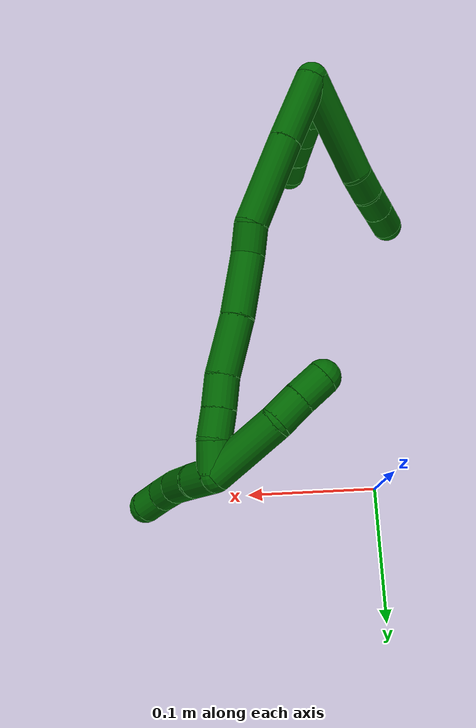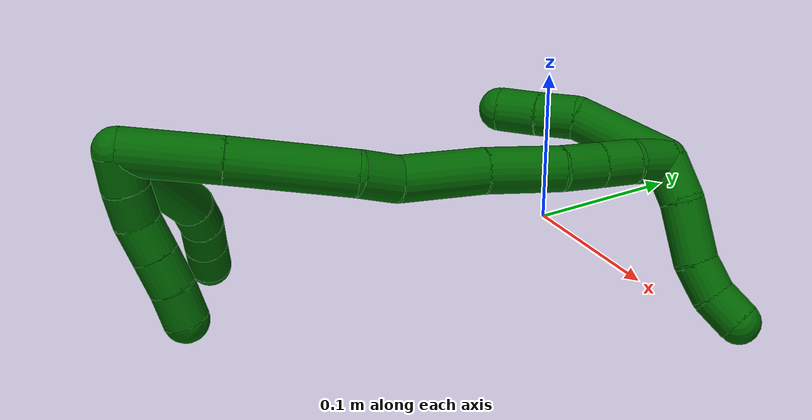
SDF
<sdf version="1.7">
 <world name="default">
  <model name="6">
   <static>0</static>
   <link name="6">
    <collision name="collision-cylinder-e_1_2_8">
     <pose>-0.001453 0.002275 -0.040774 -3.08585 -0.035566 1.13566</pose>
     <geometry><cylinder><radius>0.0125</radius><length>0.081727</length></cylinder></geometry>
     <surface>
      <friction><ode><mu>1.16</mu><mu2>1.16</mu2><slip1>0</slip1><slip2>0</slip2></ode></friction>
      <contact><ode><kp>1e+06</kp><kd>1</kd><max_vel>0</max_vel><min_depth>0.001</min_depth></ode></contact>
     </surface>
    </collision>
    <visual name="visual-cylinder-e_1_2_8">
     <pose>-0.001453 0.002275 -0.040774 -3.08585 -0.035566 1.13566</pose>
     <geometry><cylinder><radius>0.0125</radius><length>0.081727</length></cylinder></geometry>
     <material><ambient>0 0.392157 0.003922 1</ambient></material>
    </visual>
    <collision name="collision-cylinder-e_2_8_9">
     <pose>-0.003919 0.002642 -0.092296 2.96581 -0.092562 -0.967793</pose>
     <geometry><cylinder><radius>0.0125</radius><length>0.021925</length></cylinder></geometry>
     <surface>
      <friction><ode><mu>1.16</mu><mu2>1.16</mu2><slip1>0</slip1><slip2>0</slip2></ode></friction>
      <contact><ode><kp>1e+06</kp><kd>1</kd><max_vel>0</max_vel><min_depth>0.001</min_depth></ode></contact>
     </surface>
    </collision>
    <visual name="visual-cylinder-e_2_8_9">
     <pose>-0.003919 0.002642 -0.092296 2.96581 -0.092562 -0.967793</pose>
     <geometry><cylinder><radius>0.0125</radius><length>0.021925</length></cylinder></geometry>
     <material><ambient>0 0.392157 0.003922 1</ambient></material>
    </visual>
    <collision name="collision-cylinder-e_3_9_10">
     <pose>-0.006268 -0.003019 -0.113605 2.80031 -0.118541 -0.663294</pose>
     <geometry><cylinder><radius>0.0125</radius><length>0.022574</length></cylinder></geometry>
     <surface>
      <friction><ode><mu>1.16</mu><mu2>1.16</mu2><slip1>0</slip1><slip2>0</slip2></ode></friction>
      <contact><ode><kp>1e+06</kp><kd>1</kd><max_vel>0</max_vel><min_depth>0.001</min_depth></ode></contact>
     </surface>
    </collision>
    <visual name="visual-cylinder-e_3_9_10">
     <pose>-0.006268 -0.003019 -0.113605 2.80031 -0.118541 -0.663294</pose>
     <geometry><cylinder><radius>0.0125</radius><length>0.022574</length></cylinder></geometry>
     <material><ambient>0 0.392157 0.003922 1</ambient></material>
    </visual>
    <collision name="collision-cylinder-e_4_10_6">
     <pose>-0.00883 -0.010637 -0.135339 2.80839 -0.10348 -0.597481</pose>
     <geometry><cylinder><radius>0.0125</radius><length>0.023773</length></cylinder></geometry>
     <surface>
      <friction><ode><mu>1.16</mu><mu2>1.16</mu2><slip1>0</slip1><slip2>0</slip2></ode></friction>
      <contact><ode><kp>1e+06</kp><kd>1</kd><max_vel>0</max_vel><min_depth>0.001</min_depth></ode></contact>
     </surface>
    </collision>
    <visual name="visual-cylinder-e_4_10_6">
     <pose>-0.00883 -0.010637 -0.135339 2.80839 -0.10348 -0.597481</pose>
     <geometry><cylinder><radius>0.0125</radius><length>0.023773</length></cylinder></geometry>
     <material><ambient>0 0.392157 0.003922 1</ambient></material>
    </visual>
    <collision name="collision-cylinder-e_1_2_11">
     <pose>0.00344 -0.00539 -0.007688 2.5301 0.351189 1.02417</pose>
     <geometry><cylinder><radius>0.0125</radius><length>0.02</length></cylinder></geometry>
     <surface>
      <friction><ode><mu>1.16</mu><mu2>1.16</mu2><slip1>0</slip1><slip2>0</slip2></ode></friction>
      <contact><ode><kp>1e+06</kp><kd>1</kd><max_vel>0</max_vel><min_depth>0.001</min_depth></ode></contact>
     </surface>
    </collision>
    <visual name="visual-cylinder-e_1_2_11">
     <pose>0.00344 -0.00539 -0.007688 2.5301 0.351189 1.02417</pose>
     <geometry><cylinder><radius>0.0125</radius><length>0.02</length></cylinder></geometry>
     <material><ambient>0 0.392157 0.003922 1</ambient></material>
    </visual>
    <collision name="collision-cylinder-e_2_11_12">
     <pose>0.010387 -0.015422 -0.023511 2.62308 0.358239 1.19799</pose>
     <geometry><cylinder><radius>0.0125</radius><length>0.02</length></cylinder></geometry>
     <surface>
      <friction><ode><mu>1.16</mu><mu2>1.16</mu2><slip1>0</slip1><slip2>0</slip2></ode></friction>
      <contact><ode><kp>1e+06</kp><kd>1</kd><max_vel>0</max_vel><min_depth>0.001</min_depth></ode></contact>
     </surface>
    </collision>
    <visual name="visual-cylinder-e_2_11_12">
     <pose>0.010387 -0.015422 -0.023511 2.62308 0.358239 1.19799</pose>
     <geometry><cylinder><radius>0.0125</radius><length>0.02</length></cylinder></geometry>
     <material><ambient>0 0.392157 0.003922 1</ambient></material>
    </visual>
    <collision name="collision-cylinder-e_3_12_13">
     <pose>0.019724 -0.023633 -0.038942 2.68667 0.622572 1.89432</pose>
     <geometry><cylinder><radius>0.0125</radius><length>0.02</length></cylinder></geometry>
     <surface>
      <friction><ode><mu>1.16</mu><mu2>1.16</mu2><slip1>0</slip1><slip2>0</slip2></ode></friction>
      <contact><ode><kp>1e+06</kp><kd>1</kd><max_vel>0</max_vel><min_depth>0.001</min_depth></ode></contact>
     </surface>
    </collision>
    <visual name="visual-cylinder-e_3_12_13">
     <pose>0.019724 -0.023633 -0.038942 2.68667 0.622572 1.89432</pose>
     <geometry><cylinder><radius>0.0125</radius><length>0.02</length></cylinder></geometry>
     <material><ambient>0 0.392157 0.003922 1</ambient></material>
    </visual>
    <collision name="collision-cylinder-e_4_13_14">
     <pose>0.031293 -0.030835 -0.053581 2.68213 0.611124 1.86568</pose>
     <geometry><cylinder><radius>0.0125</radius><length>0.02</length></cylinder></geometry>
     <surface>
      <friction><ode><mu>1.16</mu><mu2>1.16</mu2><slip1>0</slip1><slip2>0</slip2></ode></friction>
      <contact><ode><kp>1e+06</kp><kd>1</kd><max_vel>0</max_vel><min_depth>0.001</min_depth></ode></contact>
     </surface>
    </collision>
    <visual name="visual-cylinder-e_4_13_14">
     <pose>0.031293 -0.030835 -0.053581 2.68213 0.611124 1.86568</pose>
     <geometry><cylinder><radius>0.0125</radius><length>0.02</length></cylinder></geometry>
     <material><ambient>0 0.392157 0.003922 1</ambient></material>
    </visual>
    <collision name="collision-cylinder-e_5_14_5">
     <pose>0.041962 -0.038727 -0.068506 2.62983 0.515676 1.57877</pose>
     <geometry><cylinder><radius>0.0125</radius><length>0.02</length></cylinder></geometry>
     <surface>
      <friction><ode><mu>1.16</mu><mu2>1.16</mu2><slip1>0</slip1><slip2>0</slip2></ode></friction>
      <contact><ode><kp>1e+06</kp><kd>1</kd><max_vel>0</max_vel><min_depth>0.001</min_depth></ode></contact>
     </surface>
    </collision>
    <visual name="visual-cylinder-e_5_14_5">
     <pose>0.041962 -0.038727 -0.068506 2.62983 0.515676 1.57877</pose>
     <geometry><cylinder><radius>0.0125</radius><length>0.02</length></cylinder></geometry>
     <material><ambient>0 0.392157 0.003922 1</ambient></material>
    </visual>
    <collision name="collision-cylinder-e_1_2_15">
     <pose>0.018145 0.015395 -0.010798 -2.18248 0.767552 -1.32045</pose>
     <geometry><cylinder><radius>0.0125</radius><length>0.052263</length></cylinder></geometry>
     <surface>
      <friction><ode><mu>1.16</mu><mu2>1.16</mu2><slip1>0</slip1><slip2>0</slip2></ode></friction>
      <contact><ode><kp>1e+06</kp><kd>1</kd><max_vel>0</max_vel><min_depth>0.001</min_depth></ode></contact>
     </surface>
    </collision>
    <visual name="visual-cylinder-e_1_2_15">
     <pose>0.018145 0.015395 -0.010798 -2.18248 0.767552 -1.32045</pose>
     <geometry><cylinder><radius>0.0125</radius><length>0.052263</length></cylinder></geometry>
     <material><ambient>0 0.392157 0.003922 1</ambient></material>
    </visual>
    <collision name="collision-cylinder-e_2_15_16">
     <pose>0.059403 0.050371 -0.036417 -2.21869 0.755103 -1.34647</pose>
     <geometry><cylinder><radius>0.0125</radius><length>0.067446</length></cylinder></geometry>
     <surface>
      <friction><ode><mu>1.16</mu><mu2>1.16</mu2><slip1>0</slip1><slip2>0</slip2></ode></friction>
      <contact><ode><kp>1e+06</kp><kd>1</kd><max_vel>0</max_vel><min_depth>0.001</min_depth></ode></contact>
     </surface>
    </collision>
    <visual name="visual-cylinder-e_2_15_16">
     <pose>0.059403 0.050371 -0.036417 -2.21869 0.755103 -1.34647</pose>
     <geometry><cylinder><radius>0.0125</radius><length>0.067446</length></cylinder></geometry>
     <material><ambient>0 0.392157 0.003922 1</ambient></material>
    </visual>
    <collision name="collision-cylinder-e_3_16_17">
     <pose>0.08812 0.075927 -0.058655 -2.46343 0.531918 -1.31531</pose>
     <geometry><cylinder><radius>0.0125</radius><length>0.022103</length></cylinder></geometry>
     <surface>
      <friction><ode><mu>1.16</mu><mu2>1.16</mu2><slip1>0</slip1><slip2>0</slip2></ode></friction>
      <contact><ode><kp>1e+06</kp><kd>1</kd><max_vel>0</max_vel><min_depth>0.001</min_depth></ode></contact>
     </surface>
    </collision>
    <visual name="visual-cylinder-e_3_16_17">
     <pose>0.08812 0.075927 -0.058655 -2.46343 0.531918 -1.31531</pose>
     <geometry><cylinder><radius>0.0125</radius><length>0.022103</length></cylinder></geometry>
     <material><ambient>0 0.392157 0.003922 1</ambient></material>
    </visual>
    <collision name="collision-cylinder-e_4_17_18">
     <pose>0.105385 0.099176 -0.0776 -2.1593 0.511562 -0.909504</pose>
     <geometry><cylinder><radius>0.0125</radius><length>0.047632</length></cylinder></geometry>
     <surface>
      <friction><ode><mu>1.16</mu><mu2>1.16</mu2><slip1>0</slip1><slip2>0</slip2></ode></friction>
      <contact><ode><kp>1e+06</kp><kd>1</kd><max_vel>0</max_vel><min_depth>0.001</min_depth></ode></contact>
     </surface>
    </collision>
    <visual name="visual-cylinder-e_4_17_18">
     <pose>0.105385 0.099176 -0.0776 -2.1593 0.511562 -0.909504</pose>
     <geometry><cylinder><radius>0.0125</radius><length>0.047632</length></cylinder></geometry>
     <material><ambient>0 0.392157 0.003922 1</ambient></material>
    </visual>
    <collision name="collision-cylinder-e_5_18_19">
     <pose>0.129145 0.131015 -0.099168 -2.17429 0.599955 -1.0644</pose>
     <geometry><cylinder><radius>0.0125</radius><length>0.042868</length></cylinder></geometry>
     <surface>
      <friction><ode><mu>1.16</mu><mu2>1.16</mu2><slip1>0</slip1><slip2>0</slip2></ode></friction>
      <contact><ode><kp>1e+06</kp><kd>1</kd><max_vel>0</max_vel><min_depth>0.001</min_depth></ode></contact>
     </surface>
    </collision>
    <visual name="visual-cylinder-e_5_18_19">
     <pose>0.129145 0.131015 -0.099168 -2.17429 0.599955 -1.0644</pose>
     <geometry><cylinder><radius>0.0125</radius><length>0.042868</length></cylinder></geometry>
     <material><ambient>0 0.392157 0.003922 1</ambient></material>
    </visual>
    <collision name="collision-cylinder-e_6_19_20">
     <pose>0.146452 0.153928 -0.115539 -2.21967 0.461152 -0.883092</pose>
     <geometry><cylinder><radius>0.0125</radius><length>0.023397</length></cylinder></geometry>
     <surface>
      <friction><ode><mu>1.16</mu><mu2>1.16</mu2><slip1>0</slip1><slip2>0</slip2></ode></friction>
      <contact><ode><kp>1e+06</kp><kd>1</kd><max_vel>0</max_vel><min_depth>0.001</min_depth></ode></contact>
     </surface>
    </collision>
    <visual name="visual-cylinder-e_6_19_20">
     <pose>0.146452 0.153928 -0.115539 -2.21967 0.461152 -0.883092</pose>
     <geometry><cylinder><radius>0.0125</radius><length>0.023397</length></cylinder></geometry>
     <material><ambient>0 0.392157 0.003922 1</ambient></material>
    </visual>
    <collision name="collision-cylinder-e_7_20_21">
     <pose>0.156644 0.169928 -0.127077 -2.16827 0.494056 -0.889528</pose>
     <geometry><cylinder><radius>0.0125</radius><length>0.021027</length></cylinder></geometry>
     <surface>
      <friction><ode><mu>1.16</mu><mu2>1.16</mu2><slip1>0</slip1><slip2>0</slip2></ode></friction>
      <contact><ode><kp>1e+06</kp><kd>1</kd><max_vel>0</max_vel><min_depth>0.001</min_depth></ode></contact>
     </surface>
    </collision>
    <visual name="visual-cylinder-e_7_20_21">
     <pose>0.156644 0.169928 -0.127077 -2.16827 0.494056 -0.889528</pose>
     <geometry><cylinder><radius>0.0125</radius><length>0.021027</length></cylinder></geometry>
     <material><ambient>0 0.392157 0.003922 1</ambient></material>
    </visual>
    <collision name="collision-cylinder-e_8_21_1">
     <pose>0.165835 0.185246 -0.139957 -2.35668 0.369943 -0.849093</pose>
     <geometry><cylinder><radius>0.0125</radius><length>0.023264</length></cylinder></geometry>
     <surface>
      <friction><ode><mu>1.16</mu><mu2>1.16</mu2><slip1>0</slip1><slip2>0</slip2></ode></friction>
      <contact><ode><kp>1e+06</kp><kd>1</kd><max_vel>0</max_vel><min_depth>0.001</min_depth></ode></contact>
     </surface>
    </collision>
    <visual name="visual-cylinder-e_8_21_1">
     <pose>0.165835 0.185246 -0.139957 -2.35668 0.369943 -0.849093</pose>
     <geometry><cylinder><radius>0.0125</radius><length>0.023264</length></cylinder></geometry>
     <material><ambient>0 0.392157 0.003922 1</ambient></material>
    </visual>
    <collision name="collision-cylinder-e_1_1_22">
     <pose>0.143651 0.187658 -0.141752 0.729336 -1.28056 -0.554146</pose>
     <geometry><cylinder><radius>0.0125</radius><length>0.055083</length></cylinder></geometry>
     <surface>
      <friction><ode><mu>1.16</mu><mu2>1.16</mu2><slip1>0</slip1><slip2>0</slip2></ode></friction>
      <contact><ode><kp>1e+06</kp><kd>1</kd><max_vel>0</max_vel><min_depth>0.001</min_depth></ode></contact>
     </surface>
    </collision>
    <visual name="visual-cylinder-e_1_1_22">
     <pose>0.143651 0.187658 -0.141752 0.729336 -1.28056 -0.554146</pose>
     <geometry><cylinder><radius>0.0125</radius><length>0.055083</length></cylinder></geometry>
     <material><ambient>0 0.392157 0.003922 1</ambient></material>
    </visual>
    <collision name="collision-cylinder-e_2_22_23">
     <pose>0.10751 0.176919 -0.135164 1.44182 -1.05472 -0.945962</pose>
     <geometry><cylinder><radius>0.0125</radius><length>0.022425</length></cylinder></geometry>
     <surface>
      <friction><ode><mu>1.16</mu><mu2>1.16</mu2><slip1>0</slip1><slip2>0</slip2></ode></friction>
      <contact><ode><kp>1e+06</kp><kd>1</kd><max_vel>0</max_vel><min_depth>0.001</min_depth></ode></contact>
     </surface>
    </collision>
    <visual name="visual-cylinder-e_2_22_23">
     <pose>0.10751 0.176919 -0.135164 1.44182 -1.05472 -0.945962</pose>
     <geometry><cylinder><radius>0.0125</radius><length>0.022425</length></cylinder></geometry>
     <material><ambient>0 0.392157 0.003922 1</ambient></material>
    </visual>
    <collision name="collision-cylinder-e_3_23_4">
     <pose>0.08773 0.16636 -0.134008 1.4834 -1.10101 -1.02458</pose>
     <geometry><cylinder><radius>0.0125</radius><length>0.022493</length></cylinder></geometry>
     <surface>
      <friction><ode><mu>1.16</mu><mu2>1.16</mu2><slip1>0</slip1><slip2>0</slip2></ode></friction>
      <contact><ode><kp>1e+06</kp><kd>1</kd><max_vel>0</max_vel><min_depth>0.001</min_depth></ode></contact>
     </surface>
    </collision>
    <visual name="visual-cylinder-e_3_23_4">
     <pose>0.08773 0.16636 -0.134008 1.4834 -1.10101 -1.02458</pose>
     <geometry><cylinder><radius>0.0125</radius><length>0.022493</length></cylinder></geometry>
     <material><ambient>0 0.392157 0.003922 1</ambient></material>
    </visual>
    <collision name="collision-cylinder-e_1_1_24">
     <pose>0.179976 0.186839 -0.151577 2.1474 0.940939 1.50616</pose>
     <geometry><cylinder><radius>0.0125</radius><length>0.024589</length></cylinder></geometry>
     <surface>
      <friction><ode><mu>1.16</mu><mu2>1.16</mu2><slip1>0</slip1><slip2>0</slip2></ode></friction>
      <contact><ode><kp>1e+06</kp><kd>1</kd><max_vel>0</max_vel><min_depth>0.001</min_depth></ode></contact>
     </surface>
    </collision>
    <visual name="visual-cylinder-e_1_1_24">
     <pose>0.179976 0.186839 -0.151577 2.1474 0.940939 1.50616</pose>
     <geometry><cylinder><radius>0.0125</radius><length>0.024589</length></cylinder></geometry>
     <material><ambient>0 0.392157 0.003922 1</ambient></material>
    </visual>
    <collision name="collision-cylinder-e_2_24_25">
     <pose>0.201394 0.170602 -0.163451 2.23297 0.727702 1.32451</pose>
     <geometry><cylinder><radius>0.0125</radius><length>0.034526</length></cylinder></geometry>
     <surface>
      <friction><ode><mu>1.16</mu><mu2>1.16</mu2><slip1>0</slip1><slip2>0</slip2></ode></friction>
      <contact><ode><kp>1e+06</kp><kd>1</kd><max_vel>0</max_vel><min_depth>0.001</min_depth></ode></contact>
     </surface>
    </collision>
    <visual name="visual-cylinder-e_2_24_25">
     <pose>0.201394 0.170602 -0.163451 2.23297 0.727702 1.32451</pose>
     <geometry><cylinder><radius>0.0125</radius><length>0.034526</length></cylinder></geometry>
     <material><ambient>0 0.392157 0.003922 1</ambient></material>
    </visual>
    <collision name="collision-cylinder-e_3_25_26">
     <pose>0.221221 0.156389 -0.175945 2.41672 0.939247 1.85821</pose>
     <geometry><cylinder><radius>0.0125</radius><length>0.020678</length></cylinder></geometry>
     <surface>
      <friction><ode><mu>1.16</mu><mu2>1.16</mu2><slip1>0</slip1><slip2>0</slip2></ode></friction>
      <contact><ode><kp>1e+06</kp><kd>1</kd><max_vel>0</max_vel><min_depth>0.001</min_depth></ode></contact>
     </surface>
    </collision>
    <visual name="visual-cylinder-e_3_25_26">
     <pose>0.221221 0.156389 -0.175945 2.41672 0.939247 1.85821</pose>
     <geometry><cylinder><radius>0.0125</radius><length>0.020678</length></cylinder></geometry>
     <material><ambient>0 0.392157 0.003922 1</ambient></material>
    </visual>
    <collision name="collision-cylinder-e_4_26_3">
     <pose>0.239003 0.150868 -0.183807 2.72074 1.20572 2.53985</pose>
     <geometry><cylinder><radius>0.0125</radius><length>0.020207</length></cylinder></geometry>
     <surface>
      <friction><ode><mu>1.16</mu><mu2>1.16</mu2><slip1>0</slip1><slip2>0</slip2></ode></friction>
      <contact><ode><kp>1e+06</kp><kd>1</kd><max_vel>0</max_vel><min_depth>0.001</min_depth></ode></contact>
     </surface>
    </collision>
    <visual name="visual-cylinder-e_4_26_3">
     <pose>0.239003 0.150868 -0.183807 2.72074 1.20572 2.53985</pose>
     <geometry><cylinder><radius>0.0125</radius><length>0.020207</length></cylinder></geometry>
     <material><ambient>0 0.392157 0.003922 1</ambient></material>
    </visual>
    <collision name="collision-sphere-3">
     <pose>0.248441 0.149395 -0.1871 0 -0 0</pose>
     <geometry><sphere><radius>0.0125</radius></sphere></geometry>
     <surface>
      <friction><ode><mu>1.16</mu><mu2>1.16</mu2><slip1>0</slip1><slip2>0</slip2></ode></friction>
      <contact><ode><kp>1e+06</kp><kd>1</kd><max_vel>0</max_vel><min_depth>0.001</min_depth></ode></contact>
     </surface>
    </collision>
    <visual name="visual-sphere-3">
     <pose>0.248441 0.149395 -0.1871 0 -0 0</pose>
     <geometry><sphere><radius>0.0125</radius></sphere></geometry>
     <material><ambient>0 0.392157 0.003922 1</ambient></material>
    </visual>
    <collision name="collision-sphere-26">
     <pose>0.229566 0.152342 -0.180515 0 -0 0</pose>
     <geometry><sphere><radius>0.0125</radius></sphere></geometry>
     <surface>
      <friction><ode><mu>1.16</mu><mu2>1.16</mu2><slip1>0</slip1><slip2>0</slip2></ode></friction>
      <contact><ode><kp>1e+06</kp><kd>1</kd><max_vel>0</max_vel><min_depth>0.001</min_depth></ode></contact>
     </surface>
    </collision>
    <visual name="visual-sphere-26">
     <pose>0.229566 0.152342 -0.180515 0 -0 0</pose>
     <geometry><sphere><radius>0.0125</radius></sphere></geometry>
     <material><ambient>0 0.392157 0.003922 1</ambient></material>
    </visual>
    <collision name="collision-sphere-25">
     <pose>0.212876 0.160436 -0.171376 0 -0 0</pose>
     <geometry><sphere><radius>0.0125</radius></sphere></geometry>
     <surface>
      <friction><ode><mu>1.16</mu><mu2>1.16</mu2><slip1>0</slip1><slip2>0</slip2></ode></friction>
      <contact><ode><kp>1e+06</kp><kd>1</kd><max_vel>0</max_vel><min_depth>0.001</min_depth></ode></contact>
     </surface>
    </collision>
    <visual name="visual-sphere-25">
     <pose>0.212876 0.160436 -0.171376 0 -0 0</pose>
     <geometry><sphere><radius>0.0125</radius></sphere></geometry>
     <material><ambient>0 0.392157 0.003922 1</ambient></material>
    </visual>
    <collision name="collision-sphere-24">
     <pose>0.189911 0.180768 -0.155525 0 -0 0</pose>
     <geometry><sphere><radius>0.0125</radius></sphere></geometry>
     <surface>
      <friction><ode><mu>1.16</mu><mu2>1.16</mu2><slip1>0</slip1><slip2>0</slip2></ode></friction>
      <contact><ode><kp>1e+06</kp><kd>1</kd><max_vel>0</max_vel><min_depth>0.001</min_depth></ode></contact>
     </surface>
    </collision>
    <visual name="visual-sphere-24">
     <pose>0.189911 0.180768 -0.155525 0 -0 0</pose>
     <geometry><sphere><radius>0.0125</radius></sphere></geometry>
     <material><ambient>0 0.392157 0.003922 1</ambient></material>
    </visual>
    <collision name="collision-sphere-4">
     <pose>0.077702 0.161288 -0.133563 0 -0 0</pose>
     <geometry><sphere><radius>0.0125</radius></sphere></geometry>
     <surface>
      <friction><ode><mu>1.16</mu><mu2>1.16</mu2><slip1>0</slip1><slip2>0</slip2></ode></friction>
      <contact><ode><kp>1e+06</kp><kd>1</kd><max_vel>0</max_vel><min_depth>0.001</min_depth></ode></contact>
     </surface>
    </collision>
    <visual name="visual-sphere-4">
     <pose>0.077702 0.161288 -0.133563 0 -0 0</pose>
     <geometry><sphere><radius>0.0125</radius></sphere></geometry>
     <material><ambient>0 0.392157 0.003922 1</ambient></material>
    </visual>
    <collision name="collision-sphere-23">
     <pose>0.097758 0.171432 -0.134452 0 -0 0</pose>
     <geometry><sphere><radius>0.0125</radius></sphere></geometry>
     <surface>
      <friction><ode><mu>1.16</mu><mu2>1.16</mu2><slip1>0</slip1><slip2>0</slip2></ode></friction>
      <contact><ode><kp>1e+06</kp><kd>1</kd><max_vel>0</max_vel><min_depth>0.001</min_depth></ode></contact>
     </surface>
    </collision>
    <visual name="visual-sphere-23">
     <pose>0.097758 0.171432 -0.134452 0 -0 0</pose>
     <geometry><sphere><radius>0.0125</radius></sphere></geometry>
     <material><ambient>0 0.392157 0.003922 1</ambient></material>
    </visual>
    <collision name="collision-sphere-22">
     <pose>0.117262 0.182406 -0.135875 0 -0 0</pose>
     <geometry><sphere><radius>0.0125</radius></sphere></geometry>
     <surface>
      <friction><ode><mu>1.16</mu><mu2>1.16</mu2><slip1>0</slip1><slip2>0</slip2></ode></friction>
      <contact><ode><kp>1e+06</kp><kd>1</kd><max_vel>0</max_vel><min_depth>0.001</min_depth></ode></contact>
     </surface>
    </collision>
    <visual name="visual-sphere-22">
     <pose>0.117262 0.182406 -0.135875 0 -0 0</pose>
     <geometry><sphere><radius>0.0125</radius></sphere></geometry>
     <material><ambient>0 0.392157 0.003922 1</ambient></material>
    </visual>
    <collision name="collision-sphere-1">
     <pose>0.17004 0.19291 -0.147629 0 -0 0</pose>
     <geometry><sphere><radius>0.0125</radius></sphere></geometry>
     <surface>
      <friction><ode><mu>1.16</mu><mu2>1.16</mu2><slip1>0</slip1><slip2>0</slip2></ode></friction>
      <contact><ode><kp>1e+06</kp><kd>1</kd><max_vel>0</max_vel><min_depth>0.001</min_depth></ode></contact>
     </surface>
    </collision>
    <visual name="visual-sphere-1">
     <pose>0.17004 0.19291 -0.147629 0 -0 0</pose>
     <geometry><sphere><radius>0.0125</radius></sphere></geometry>
     <material><ambient>0 0.392157 0.003922 1</ambient></material>
    </visual>
    <collision name="collision-sphere-21">
     <pose>0.161629 0.177581 -0.132284 0 -0 0</pose>
     <geometry><sphere><radius>0.0125</radius></sphere></geometry>
     <surface>
      <friction><ode><mu>1.16</mu><mu2>1.16</mu2><slip1>0</slip1><slip2>0</slip2></ode></friction>
      <contact><ode><kp>1e+06</kp><kd>1</kd><max_vel>0</max_vel><min_depth>0.001</min_depth></ode></contact>
     </surface>
    </collision>
    <visual name="visual-sphere-21">
     <pose>0.161629 0.177581 -0.132284 0 -0 0</pose>
     <geometry><sphere><radius>0.0125</radius></sphere></geometry>
     <material><ambient>0 0.392157 0.003922 1</ambient></material>
    </visual>
    <collision name="collision-sphere-11">
     <pose>0.00688 -0.010781 -0.015376 0 -0 0</pose>
     <geometry><sphere><radius>0.0125</radius></sphere></geometry>
     <surface>
      <friction><ode><mu>1.16</mu><mu2>1.16</mu2><slip1>0</slip1><slip2>0</slip2></ode></friction>
      <contact><ode><kp>1e+06</kp><kd>1</kd><max_vel>0</max_vel><min_depth>0.001</min_depth></ode></contact>
     </surface>
    </collision>
    <visual name="visual-sphere-11">
     <pose>0.00688 -0.010781 -0.015376 0 -0 0</pose>
     <geometry><sphere><radius>0.0125</radius></sphere></geometry>
     <material><ambient>0 0.392157 0.003922 1</ambient></material>
    </visual>
    <collision name="collision-sphere-6">
     <pose>-0.010058 -0.014504 -0.146512 0 -0 0</pose>
     <geometry><sphere><radius>0.0125</radius></sphere></geometry>
     <surface>
      <friction><ode><mu>1.16</mu><mu2>1.16</mu2><slip1>0</slip1><slip2>0</slip2></ode></friction>
      <contact><ode><kp>1e+06</kp><kd>1</kd><max_vel>0</max_vel><min_depth>0.001</min_depth></ode></contact>
     </surface>
    </collision>
    <visual name="visual-sphere-6">
     <pose>-0.010058 -0.014504 -0.146512 0 -0 0</pose>
     <geometry><sphere><radius>0.0125</radius></sphere></geometry>
     <material><ambient>0 0.392157 0.003922 1</ambient></material>
    </visual>
    <collision name="collision-sphere-10">
     <pose>-0.007602 -0.00677 -0.124166 0 -0 0</pose>
     <geometry><sphere><radius>0.0125</radius></sphere></geometry>
     <surface>
      <friction><ode><mu>1.16</mu><mu2>1.16</mu2><slip1>0</slip1><slip2>0</slip2></ode></friction>
      <contact><ode><kp>1e+06</kp><kd>1</kd><max_vel>0</max_vel><min_depth>0.001</min_depth></ode></contact>
     </surface>
    </collision>
    <visual name="visual-sphere-10">
     <pose>-0.007602 -0.00677 -0.124166 0 -0 0</pose>
     <geometry><sphere><radius>0.0125</radius></sphere></geometry>
     <material><ambient>0 0.392157 0.003922 1</ambient></material>
    </visual>
    <collision name="collision-sphere-9">
     <pose>-0.004933 0.000733 -0.103043 0 -0 0</pose>
     <geometry><sphere><radius>0.0125</radius></sphere></geometry>
     <surface>
      <friction><ode><mu>1.16</mu><mu2>1.16</mu2><slip1>0</slip1><slip2>0</slip2></ode></friction>
      <contact><ode><kp>1e+06</kp><kd>1</kd><max_vel>0</max_vel><min_depth>0.001</min_depth></ode></contact>
     </surface>
    </collision>
    <visual name="visual-sphere-9">
     <pose>-0.004933 0.000733 -0.103043 0 -0 0</pose>
     <geometry><sphere><radius>0.0125</radius></sphere></geometry>
     <material><ambient>0 0.392157 0.003922 1</ambient></material>
    </visual>
    <collision name="collision-sphere-2">
     <geometry><sphere><radius>0.0125</radius></sphere></geometry>
     <surface>
      <friction><ode><mu>1.16</mu><mu2>1.16</mu2><slip1>0</slip1><slip2>0</slip2></ode></friction>
      <contact><ode><kp>1e+06</kp><kd>1</kd><max_vel>0</max_vel><min_depth>0.001</min_depth></ode></contact>
     </surface>
    </collision>
    <visual name="visual-sphere-2">
     <geometry><sphere><radius>0.0125</radius></sphere></geometry>
     <material><ambient>0 0.392157 0.003922 1</ambient></material>
    </visual>
    <collision name="collision-sphere-19">
     <pose>0.141247 0.145581 -0.109208 0 -0 0</pose>
     <geometry><sphere><radius>0.0125</radius></sphere></geometry>
     <surface>
      <friction><ode><mu>1.16</mu><mu2>1.16</mu2><slip1>0</slip1><slip2>0</slip2></ode></friction>
      <contact><ode><kp>1e+06</kp><kd>1</kd><max_vel>0</max_vel><min_depth>0.001</min_depth></ode></contact>
     </surface>
    </collision>
    <visual name="visual-sphere-19">
     <pose>0.141247 0.145581 -0.109208 0 -0 0</pose>
     <geometry><sphere><radius>0.0125</radius></sphere></geometry>
     <material><ambient>0 0.392157 0.003922 1</ambient></material>
    </visual>
    <collision name="collision-sphere-8">
     <pose>-0.002906 0.004551 -0.081548 0 -0 0</pose>
     <geometry><sphere><radius>0.0125</radius></sphere></geometry>
     <surface>
      <friction><ode><mu>1.16</mu><mu2>1.16</mu2><slip1>0</slip1><slip2>0</slip2></ode></friction>
      <contact><ode><kp>1e+06</kp><kd>1</kd><max_vel>0</max_vel><min_depth>0.001</min_depth></ode></contact>
     </surface>
    </collision>
    <visual name="visual-sphere-8">
     <pose>-0.002906 0.004551 -0.081548 0 -0 0</pose>
     <geometry><sphere><radius>0.0125</radius></sphere></geometry>
     <material><ambient>0 0.392157 0.003922 1</ambient></material>
    </visual>
    <collision name="collision-sphere-12">
     <pose>0.013893 -0.020064 -0.031645 0 -0 0</pose>
     <geometry><sphere><radius>0.0125</radius></sphere></geometry>
     <surface>
      <friction><ode><mu>1.16</mu><mu2>1.16</mu2><slip1>0</slip1><slip2>0</slip2></ode></friction>
      <contact><ode><kp>1e+06</kp><kd>1</kd><max_vel>0</max_vel><min_depth>0.001</min_depth></ode></contact>
     </surface>
    </collision>
    <visual name="visual-sphere-12">
     <pose>0.013893 -0.020064 -0.031645 0 -0 0</pose>
     <geometry><sphere><radius>0.0125</radius></sphere></geometry>
     <material><ambient>0 0.392157 0.003922 1</ambient></material>
    </visual>
    <collision name="collision-sphere-13">
     <pose>0.025555 -0.027203 -0.04624 0 -0 0</pose>
     <geometry><sphere><radius>0.0125</radius></sphere></geometry>
     <surface>
      <friction><ode><mu>1.16</mu><mu2>1.16</mu2><slip1>0</slip1><slip2>0</slip2></ode></friction>
      <contact><ode><kp>1e+06</kp><kd>1</kd><max_vel>0</max_vel><min_depth>0.001</min_depth></ode></contact>
     </surface>
    </collision>
    <visual name="visual-sphere-13">
     <pose>0.025555 -0.027203 -0.04624 0 -0 0</pose>
     <geometry><sphere><radius>0.0125</radius></sphere></geometry>
     <material><ambient>0 0.392157 0.003922 1</ambient></material>
    </visual>
    <collision name="collision-sphere-14">
     <pose>0.037031 -0.034467 -0.060921 0 -0 0</pose>
     <geometry><sphere><radius>0.0125</radius></sphere></geometry>
     <surface>
      <friction><ode><mu>1.16</mu><mu2>1.16</mu2><slip1>0</slip1><slip2>0</slip2></ode></friction>
      <contact><ode><kp>1e+06</kp><kd>1</kd><max_vel>0</max_vel><min_depth>0.001</min_depth></ode></contact>
     </surface>
    </collision>
    <visual name="visual-sphere-14">
     <pose>0.037031 -0.034467 -0.060921 0 -0 0</pose>
     <geometry><sphere><radius>0.0125</radius></sphere></geometry>
     <material><ambient>0 0.392157 0.003922 1</ambient></material>
    </visual>
    <collision name="collision-sphere-5">
     <pose>0.046894 -0.042987 -0.076091 0 -0 0</pose>
     <geometry><sphere><radius>0.0125</radius></sphere></geometry>
     <surface>
      <friction><ode><mu>1.16</mu><mu2>1.16</mu2><slip1>0</slip1><slip2>0</slip2></ode></friction>
      <contact><ode><kp>1e+06</kp><kd>1</kd><max_vel>0</max_vel><min_depth>0.001</min_depth></ode></contact>
     </surface>
    </collision>
    <visual name="visual-sphere-5">
     <pose>0.046894 -0.042987 -0.076091 0 -0 0</pose>
     <geometry><sphere><radius>0.0125</radius></sphere></geometry>
     <material><ambient>0 0.392157 0.003922 1</ambient></material>
    </visual>
    <collision name="collision-sphere-15">
     <pose>0.03629 0.03079 -0.021597 0 -0 0</pose>
     <geometry><sphere><radius>0.0125</radius></sphere></geometry>
     <surface>
      <friction><ode><mu>1.16</mu><mu2>1.16</mu2><slip1>0</slip1><slip2>0</slip2></ode></friction>
      <contact><ode><kp>1e+06</kp><kd>1</kd><max_vel>0</max_vel><min_depth>0.001</min_depth></ode></contact>
     </surface>
    </collision>
    <visual name="visual-sphere-15">
     <pose>0.03629 0.03079 -0.021597 0 -0 0</pose>
     <geometry><sphere><radius>0.0125</radius></sphere></geometry>
     <material><ambient>0 0.392157 0.003922 1</ambient></material>
    </visual>
    <collision name="collision-sphere-16">
     <pose>0.082515 0.069951 -0.051238 0 -0 0</pose>
     <geometry><sphere><radius>0.0125</radius></sphere></geometry>
     <surface>
      <friction><ode><mu>1.16</mu><mu2>1.16</mu2><slip1>0</slip1><slip2>0</slip2></ode></friction>
      <contact><ode><kp>1e+06</kp><kd>1</kd><max_vel>0</max_vel><min_depth>0.001</min_depth></ode></contact>
     </surface>
    </collision>
    <visual name="visual-sphere-16">
     <pose>0.082515 0.069951 -0.051238 0 -0 0</pose>
     <geometry><sphere><radius>0.0125</radius></sphere></geometry>
     <material><ambient>0 0.392157 0.003922 1</ambient></material>
    </visual>
    <collision name="collision-sphere-17">
     <pose>0.093726 0.081902 -0.066072 0 -0 0</pose>
     <geometry><sphere><radius>0.0125</radius></sphere></geometry>
     <surface>
      <friction><ode><mu>1.16</mu><mu2>1.16</mu2><slip1>0</slip1><slip2>0</slip2></ode></friction>
      <contact><ode><kp>1e+06</kp><kd>1</kd><max_vel>0</max_vel><min_depth>0.001</min_depth></ode></contact>
     </surface>
    </collision>
    <visual name="visual-sphere-17">
     <pose>0.093726 0.081902 -0.066072 0 -0 0</pose>
     <geometry><sphere><radius>0.0125</radius></sphere></geometry>
     <material><ambient>0 0.392157 0.003922 1</ambient></material>
    </visual>
    <collision name="collision-sphere-18">
     <pose>0.117044 0.116449 -0.089129 0 -0 0</pose>
     <geometry><sphere><radius>0.0125</radius></sphere></geometry>
     <surface>
      <friction><ode><mu>1.16</mu><mu2>1.16</mu2><slip1>0</slip1><slip2>0</slip2></ode></friction>
      <contact><ode><kp>1e+06</kp><kd>1</kd><max_vel>0</max_vel><min_depth>0.001</min_depth></ode></contact>
     </surface>
    </collision>
    <visual name="visual-sphere-18">
     <pose>0.117044 0.116449 -0.089129 0 -0 0</pose>
     <geometry><sphere><radius>0.0125</radius></sphere></geometry>
     <material><ambient>0 0.392157 0.003922 1</ambient></material>
    </visual>
    <collision name="collision-sphere-20">
     <pose>0.151658 0.162275 -0.12187 0 -0 0</pose>
     <geometry><sphere><radius>0.0125</radius></sphere></geometry>
     <surface>
      <friction><ode><mu>1.16</mu><mu2>1.16</mu2><slip1>0</slip1><slip2>0</slip2></ode></friction>
      <contact><ode><kp>1e+06</kp><kd>1</kd><max_vel>0</max_vel><min_depth>0.001</min_depth></ode></contact>
     </surface>
    </collision>
    <visual name="visual-sphere-20">
     <pose>0.151658 0.162275 -0.12187 0 -0 0</pose>
     <geometry><sphere><radius>0.0125</radius></sphere></geometry>
     <material><ambient>0 0.392157 0.003922 1</ambient></material>
    </visual>
    <inertial>
     <pose>0.083595 0.080213 -0.088606 0 -0 0</pose>
     <mass>0.75</mass>
     <inertia><ixx>6.5e-05</ixx><ixy>0</ixy><ixz>0</ixz><iyy>2.3e-05</iyy><iyz>0</iyz><izz>-9.5e-05</izz></inertia>
    </inertial>
   </link>
   <pose>0.037352 -0.287644 0.126225 0.691583 0.276176 0.317279</pose>
  </model>
 </world>
</sdf>
